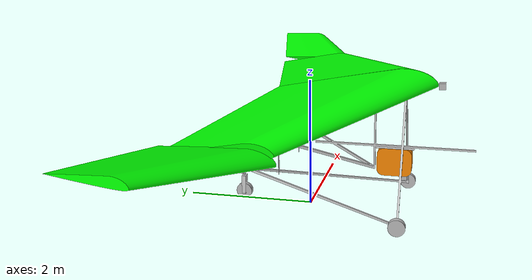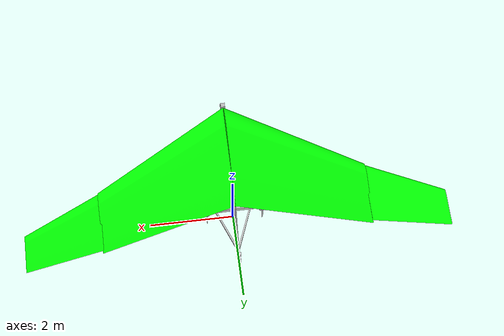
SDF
<?xml version="1.0" ?>
<sdf version="1.9">
  <model name="wsc_aircraft">
  <static>0</static>
  <self_collide>0</self_collide>

    <!-- Links -->

    <link name="base_link">
      <inertial>
        <pose>0 0 0 0 0 0</pose>
        <mass>0.001</mass>
        <inertia>
          <ixx>1e-10</ixx>
          <ixy>0</ixy>
          <iyy>1e-10</iyy>
          <ixz>0</ixz>
          <iyz>0</iyz>
          <izz>1e-10</izz>
        </inertia>
      </inertial>

    <!-- save for debugging use -->
    </link>

    <link name="wing_body">
      <pose>0 -1.47 1.95 0 0 0</pose>
      <inertial>
        <mass>0.001</mass>
        <inertia>
          <ixx>1e-10</ixx>
          <ixy>0</ixy>
          <iyy>1e-10</iyy>
          <ixz>0</ixz>
          <iyz>0</iyz>
          <izz>1e-10</izz>
        </inertia>
      </inertial>
    </link>

<link name="wing_root_left">
      <pose>-0.1 0 0 -0.05 0.05 0</pose>
      <inertial>
        <pose>1.28 -0.576 2 0 0 0</pose>
        <mass>9.3</mass>
        <inertia>
          <ixx>3.159</ixx>
          <ixy>-2.957</ixy>
          <iyy>6.887</iyy>
          <ixz>0.067</ixz>
          <iyz>0.082</iyz>
          <izz>9.962</izz>
        </inertia>
      </inertial>
      <visual name="wing_root_left_visual">
        <geometry>
          <mesh>
            <uri>model://wsc_aircraft/meshes/wing_root_left.dae</uri>
          </mesh>
        </geometry>
        <material>
          <ambient>0 1 0</ambient>
          <diffuse>0 1 0</diffuse>
          <specular>0.1 0.1 0.1 1</specular>
        </material>
      </visual>
      <collision name="wing_root_left_collision">
        <geometry>
          <mesh>
            <uri>model://wsc_aircraft/meshes/wing_root_left.dae</uri>
          </mesh>
        </geometry>
      </collision>
    </link>

    <link name="wing_root_right">
      <pose>0.1 0 0 -0.05 -0.05 0</pose>
      <inertial>
        <pose>-1.28 -0.576 2 0 0 0</pose>
        <mass>9.3</mass>
        <inertia>
          <ixx>3.159</ixx>
          <ixy>2.957</ixy>
          <iyy>6.887</iyy>
          <ixz>-0.067</ixz>
          <iyz>0.082</iyz>
          <izz>9.962</izz>
        </inertia>
      </inertial>
      <visual name="wing_root_right_visual">
        <geometry>
          <mesh>
            <uri>model://wsc_aircraft/meshes/wing_root_right.dae</uri>
          </mesh>
        </geometry>
        <material>
          <ambient>0 1 0</ambient>
          <diffuse>0 1 0</diffuse>
          <specular>0.1 0.1 0.1 1</specular>
        </material>
      </visual>
      <collision name="wing_root_right_collision">
        <geometry>
          <mesh>
            <uri>model://wsc_aircraft/meshes/wing_root_right.dae</uri>
          </mesh>
        </geometry>
      </collision>
    </link>

    <link name="wing_tip_left">
      <pose>0.3 0.26 -0.65 0.1 -0.15 0</pose>
      <inertial>
        <pose>3.8 0.5 1.93 0 0 0</pose>
        <mass>1.7</mass>
        <inertia>
          <ixx>0.215</ixx>
          <ixy>-0.187</ixy>
          <iyy>0.439</iyy>
          <ixz>-0.002</ixz>
          <iyz>-0.002</iyz>
          <izz>0.647</izz>
        </inertia>
      </inertial>
      <visual name="wing_tip_left_visual">
        <geometry>
          <mesh>
            <uri>model://wsc_aircraft/meshes/wing_tip_left_2.dae</uri>
          </mesh>
        </geometry>
        <material>
          <ambient>0 1 0</ambient>
          <diffuse>0 1 0</diffuse>
          <specular>0.1 0.1 0.1 1</specular>
        </material>
      </visual>
      <collision name="wing_tip_left_collision">
        <geometry>
          <mesh>
            <uri>model://wsc_aircraft/meshes/wing_tip_left_2.dae</uri>
          </mesh>
        </geometry>
      </collision>
    </link>

    <link name="wing_tip_right">
      <pose>-0.3 0.26 -0.65 0.1 0.15 0</pose>
      <inertial>
        <pose>-3.8 0.1 1.93 0 0 0</pose>
        <mass>1.7</mass>
        <inertia>
          <ixx>0.215</ixx>
          <ixy>0.187</ixy>
          <iyy>0.439</iyy>
          <ixz>0.002</ixz>
          <iyz>-0.002</iyz>
          <izz>0.647</izz>
        </inertia>
      </inertial>
      <visual name="wing_tip_right_visual">
        <geometry>
          <mesh>
            <uri>model://wsc_aircraft/meshes/wing_tip_right_2.dae</uri>
          </mesh>
        </geometry>
        <material>
          <ambient>0 1 0</ambient>
          <diffuse>0 1 0</diffuse>
          <specular>0.1 0.1 0.1 1</specular>
        </material>
      </visual>
      <collision name="wing_tip_right_collision">
        <geometry>
          <mesh>
            <uri>model://wsc_aircraft/meshes/wing_tip_right_2.dae</uri>
          </mesh>
        </geometry>
      </collision>
    </link>

    <link name="front_wheel1">
      <pose>-1 -1.47 0.127 1.58 0 1.58</pose>
      <inertial>
        <mass>1</mass>
        <inertia>
          <ixx>0.007</ixx>
          <ixy>0</ixy>
          <iyy>0.004</iyy>
          <ixz>0</ixz>
          <iyz>0</iyz>
          <izz>0.004</izz>
        </inertia>
      </inertial>
      <visual name="front_wheel1_visual">
        <geometry>
          <cylinder>
            <radius>0.127</radius>
            <length>0.09</length>
          </cylinder>
        </geometry>
      </visual>
      <collision name="front_wheel1_collision">
        <geometry>
          <cylinder>
            <radius>0.127</radius>
            <length>0.09</length>
          </cylinder>
        </geometry>
        <surface>
          <friction>
            <ode>
              <mu>0.01</mu>
              <mu2>0.01</mu2>
            </ode>
          </friction>
        </surface>
      </collision>
    </link>

    <link name="front_wheel2">
      <pose>1 -1.47 0.127 1.58 0 1.58</pose>
      <inertial>
        <mass>1</mass>
        <inertia>
          <ixx>0.007</ixx>
          <ixy>0</ixy>
          <iyy>0.004</iyy>
          <ixz>0</ixz>
          <iyz>0</iyz>
          <izz>0.004</izz>
        </inertia>
      </inertial>
      <visual name="front_wheel2_visual">
        <geometry>
          <cylinder>
            <radius>0.127</radius>
            <length>0.09</length>
          </cylinder>
        </geometry>
      </visual>
      <collision name="front_wheel2_collision">
        <geometry>
          <cylinder>
            <radius>0.127</radius>
            <length>0.09</length>
          </cylinder>
        </geometry>
        <surface>
          <friction>
            <ode>
              <mu>0.01</mu>
              <mu2>0.01</mu2>
            </ode>
          </friction>
        </surface>
      </collision>
    </link>

    <link name="rear_wheel">
      <pose>0 1.1 0.127 1.58 0 1.58</pose>
      <inertial>
        <mass>0.48</mass>
        <inertia>
          <ixx>0.004</ixx>
          <ixy>0</ixy>
          <iyy>0.002</iyy>
          <ixz>0</ixz>
          <iyz>0</iyz>
          <izz>0.002</izz>
        </inertia>
      </inertial>
      <visual name="rear_wheel_visual">
        <geometry>
          <cylinder>
            <radius>0.127</radius>
            <length>0.09</length>
          </cylinder>
        </geometry>
      </visual>
      <collision name="rear_wheel_collision">
        <geometry>
          <cylinder>
            <radius>0.127</radius>
            <length>0.09</length>
          </cylinder>
        </geometry>
        <surface>
          <friction>
            <ode>
              <mu>0.01</mu>
              <mu2>0.01</mu2>
            </ode>
          </friction>
        </surface>
      </collision>
    </link>

    <link name="landing_gear">
      <inertial>
        <pose>0 0.385 0.664 0 0 0</pose>
        <mass>6.3</mass>
        <inertia>
          <ixx>7.391</ixx>
          <ixy>0</ixy>
          <iyy>3.202</iyy>
          <ixz>0</ixz>
          <iyz>0.373</iyz>
          <izz>7.265</izz>
        </inertia>
      </inertial>
      <visual name="landing_gear_visual">
        <geometry>
          <mesh>
            <uri>model://wsc_aircraft/meshes/landing_gear.dae</uri>
          </mesh>
        </geometry>
      </visual>
      <collision name="landing_gear_collision">
        <geometry>
          <mesh>
            <uri>model://wsc_aircraft/meshes/landing_gear.dae</uri>
          </mesh>
        </geometry>
      </collision>
    </link>

    <link name="steering_link">
      <inertial>
        <pose>0 1.1 0.335 0 0 0</pose>
        <mass>0.1</mass>
        <inertia>
          <ixx>0.001</ixx>
          <ixy>0</ixy>
          <iyy>0.001</iyy>
          <ixz>0</ixz>
          <iyz>0</iyz>
          <izz>1.847e-4</izz>
        </inertia>
      </inertial>
      <visual name="steering_link_visual">
        <geometry>
          <mesh>
            <uri>model://wsc_aircraft/meshes/steering_link.dae</uri>
          </mesh>
        </geometry>
      </visual>
      <collision name="steering_link_collision">
        <pose>0 1.1 0.335 0 0 0</pose>
        <geometry>
          <box>
            <size>0.122 0.064 0.1</size>
          </box>
        </geometry>
      </collision>
    </link>

    <link name="hang_block_yaw">
      <inertial>
        <pose>0 -1.02 1.9 0 0 0</pose>
        <mass>0.001</mass>
        <inertia>
          <ixx>1e-10</ixx>
          <ixy>0</ixy>
          <iyy>1e-10</iyy>
          <ixz>0</ixz>
          <iyz>0</iyz>
          <izz>1e-10</izz>
        </inertia>
      </inertial>
    </link>

    <link name="hang_block_roll">
      <inertial>
        <pose>0 -1.02 1.9 0 0 0</pose>
        <mass>0.3245</mass>
        <inertia>
          <ixx>0.001</ixx>
          <ixy>0</ixy>
          <iyy>1.249e-4</iyy>
          <ixz>0</ixz>
          <iyz>0</iyz>
          <izz>0.001</izz>
        </inertia>
      </inertial>
      <visual name="hang_block_roll_visual">
        <geometry>
          <mesh>
            <uri>model://wsc_aircraft/meshes/hang_block_roll.dae</uri>
          </mesh>
        </geometry>
      </visual>
      <collision name="hang_block_roll_collision">
        <geometry>
          <mesh>
            <uri>model://wsc_aircraft/meshes/hang_block_roll.dae</uri>
          </mesh>
        </geometry>
      </collision>
    </link>

    <link name="hang_block_pitch">
      <inertial>
        <pose>0 -1.02 1.9 0 0 0</pose>
        <mass>0.3245</mass>
        <inertia>
          <ixx>4.924e-5</ixx>
          <ixy>0</ixy>
          <iyy>3.172e-4</iyy>
          <ixz>0</ixz>
          <iyz>0</iyz>
          <izz>2.969e-4</izz>
        </inertia>
      </inertial>
      <visual name="hang_block_pitch_visual">
        <geometry>
          <mesh>
            <uri>model://wsc_aircraft/meshes/hang_block_pitch.dae</uri>
          </mesh>
        </geometry>
      </visual>
      <collision name="hang_block_pitch_collision">
        <geometry>
          <mesh>
            <uri>model://wsc_aircraft/meshes/hang_block_pitch.dae</uri>
          </mesh>
        </geometry>
      </collision>
    </link>

    <link name="fuselage">
      <inertial>
        <pose>0 -0.44 1.08 0 0 0</pose>
        <mass>5</mass>
        <inertia>
          <ixx>2.563</ixx>
          <ixy>0</ixy>
          <iyy>0.619</iyy>
          <ixz>0</ixz>
          <iyz>-0.09</iyz>
          <izz>2.849</izz>
        </inertia>
      </inertial>
      <visual name="fuselage_visual">
        <geometry>
          <mesh>
            <uri>model://wsc_aircraft/meshes/fuselage.dae</uri>
          </mesh>
        </geometry>
      </visual>
      <collision name="fuselage_collision">
        <geometry>
          <mesh>
            <uri>model://wsc_aircraft/meshes/fuselage.dae</uri>
          </mesh>
        </geometry>
      </collision>
    </link>

    <link name="battery">
      <inertial>
        <pose>0 -1.3254 0.795 0 0 0</pose>
        <mass>40</mass>
        <inertia>
          <ixx>1.465</ixx>
          <ixy>0</ixy>
          <iyy>0.73</iyy>
          <ixz>0</ixz>
          <iyz>0</iyz>
          <izz>1.029</izz>
        </inertia>
      </inertial>
      <visual name="battery_visual">
        <geometry>
          <mesh>
            <uri>model://wsc_aircraft/meshes/battery.dae</uri>
          </mesh>
        </geometry>
      </visual>
      <collision name="battery_collision">
        <pose>0 -1.3254 0.795 0 0 0</pose>
        <geometry>
          <box>
            <size>0.21 0.53 0.43</size>
          </box>
        </geometry>
      </collision>
    </link>

    <link name="motor1">
      <pose>-0.65 0.31 1.13 0 1.58 1.58</pose>
      <inertial>
        <mass>1.74</mass>
        <inertia>
          <ixx>0.003</ixx>
          <ixy>0</ixy>
          <iyy>0.004</iyy>
          <ixz>0</ixz>
          <iyz>0</iyz>
          <izz>0.003</izz>
        </inertia>
      </inertial>
      <visual name="motor1_visual">
        <geometry>
          <cylinder>
            <radius>0.075</radius>
            <length>0.06</length>
          </cylinder>
        </geometry>
      </visual>
      <collision name="motor1_collision">
        <geometry>
          <cylinder>
            <radius>0.075</radius>
            <length>0.06</length>
          </cylinder>
        </geometry>
      </collision>
    </link>

    <link name="motor2">
      <pose>0.65 0.31 1.13 0 1.58 1.58</pose>
      <inertial>
        <mass>1.74</mass>
        <inertia>
          <ixx>0.003</ixx>
          <ixy>0</ixy>
          <iyy>0.004</iyy>
          <ixz>0</ixz>
          <iyz>0</iyz>
          <izz>0.003</izz>
        </inertia>
      </inertial>
      <visual name="motor2_visual">
        <geometry>
          <cylinder>
            <radius>0.075</radius>
            <length>0.06</length>
          </cylinder>
        </geometry>
      </visual>
      <collision name="motor2_collision">
        <geometry>
          <cylinder>
            <radius>0.075</radius>
            <length>0.06</length>
          </cylinder>
        </geometry>
      </collision>
    </link>

    <link name="propeller1">
      <pose>-0.65 0.35 1.13 0 1.58 1.58</pose>
      <inertial>
        <mass>0.474</mass>
        <inertia>
          <ixx>0.00001686</ixx>
          <ixy>0.0001072</ixy>
          <iyy>0.0168</iyy>
          <ixz>0</ixz>
          <iyz>0</iyz>
          <izz>0.01681</izz>
        </inertia>
      </inertial>
      <visual name="propeller1_visual">
        <geometry>
          <mesh>
            <uri>model://wsc_aircraft/meshes/propeller_S.dae</uri>
            <center>true</center>
          </mesh>
        </geometry>
      </visual>
      <collision name="propeller1_collision">
        <geometry>
          <cylinder>
              <radius>0.508</radius>
              <length>0.02</length>
            </cylinder>
        </geometry>
      </collision>
    </link>

    <link name="propeller2">
      <pose>0.65 0.35 1.13 0 1.58 1.58</pose>
      <inertial>
        <mass>0.474</mass>
        <inertia>
          <ixx>0.00001686</ixx>
          <ixy>0.0001072</ixy>
          <iyy>0.0168</iyy>
          <ixz>0</ixz>
          <iyz>0</iyz>
          <izz>0.01681</izz>
        </inertia>
      </inertial>
      <visual name="propeller2_visual">
        <geometry>
          <mesh>
            <uri>model://wsc_aircraft/meshes/propeller_S.dae</uri>
            <center>true</center>
          </mesh>
        </geometry>
      </visual>
      <collision name="propeller2_collision">
        <geometry>
          <cylinder>
              <radius>0.508</radius>
              <length>0.02</length>
            </cylinder>
        </geometry>
      </collision>
    </link>

    <!-- Joints -->
    <joint name="dummy_joint" type="fixed">
      <pose relative_to='landing_gear'/>
      <parent>base_link</parent>
      <child>landing_gear</child>
    </joint>

    <joint name="wing_body_joint" type="fixed">
      <pose relative_to='wing_body'/>
      <parent>landing_gear</parent>
      <child>wing_body</child>
    </joint>

    <joint name="landing_wing_left_joint" type="revolute">
      <pose>0 -0.576 2 0 0 0</pose>
      <parent>wing_body</parent>
      <child>wing_root_left</child>
      <axis>
        <xyz>1 0 0</xyz>
        <limit>
          <lower>-0.01</lower>
          <upper>0.01</upper>
          <effort>9e80</effort>
          <velocity>1e-5</velocity>
        </limit>
        <dynamics>
          <damping>5e4</damping>
          <friction>5e2</friction>
        </dynamics>
      </axis>
    </joint>

    <joint name="landing_wing_right_joint" type="revolute">
      <pose>0 -0.576 2 0 0 0</pose>
      <parent>wing_body</parent>
      <child>wing_root_right</child>
      <axis>
        <xyz>1 0 0</xyz>
        <limit>
          <lower>-0.01</lower>
          <upper>0.01</upper>
          <effort>9e80</effort>
          <velocity>1e-5</velocity>
        </limit>
        <dynamics>
          <damping>5e4</damping>
          <friction>5e2</friction>
        </dynamics>
      </axis>
    </joint>

    <joint name="wing_joint_left" type="revolute">
      <pose>0 0.5 1.93 0 0 0</pose>
      <parent>wing_root_left</parent>
      <child>wing_tip_left</child>
      <axis>
        <xyz>1 1 0</xyz>
        <limit>
          <lower>-0.001</lower>
          <upper>0.001</upper>
          <effort>9e80</effort>
          <velocity>1e-5</velocity>
        </limit>
        <dynamics>
          <damping>5e80</damping>
          <friction>5e80</friction>
        </dynamics>
      </axis>
    </joint>

    <joint name="wing_joint_right" type="revolute">
      <pose>0 0.5 1.93 0 0 0</pose>
      <parent>wing_root_right</parent>
      <child>wing_tip_right</child>
      <axis>
        <xyz>1 1 0</xyz>
        <limit>
          <lower>-0.001</lower>
          <upper>0.001</upper>
          <effort>9e80</effort>
          <velocity>1e-5</velocity>
        </limit>
        <dynamics>
          <damping>5e80</damping>
          <friction>5e80</friction>
        </dynamics>
      </axis>
    </joint>

    <joint name="front_wheel1_joint" type="revolute">
      <pose relative_to='front_wheel1'/>
      <parent>landing_gear</parent>
      <child>front_wheel1</child>
      <axis>
        <xyz>0 0 1</xyz>
        <dynamics>
          <damping>0.1</damping>
          <friction>0.1</friction>
        </dynamics>
      </axis>
    </joint>

    <joint name="front_wheel2_joint" type="revolute">
      <pose relative_to='front_wheel2'/>
      <parent>landing_gear</parent>
      <child>front_wheel2</child>
      <axis>
        <xyz>0 0 1</xyz>
        <dynamics>
          <damping>0.1</damping>
          <friction>0.1</friction>
        </dynamics>
      </axis>
    </joint>

    <joint name="rear_wheel_joint" type="revolute">
      <pose relative_to='rear_wheel'/>
      <parent>steering_link</parent>
      <child>rear_wheel</child>
      <axis>
        <xyz>0 0 1</xyz>
        <dynamics>
          <damping>15</damping>
          <friction>1</friction>
        </dynamics>
      </axis>
    </joint>

    <joint name="steering_wheel_joint" type="revolute">
      <pose>0 1.1 0.335 0 0 0</pose>
      <parent>landing_gear</parent>
      <child>steering_link</child>
      <axis>
        <xyz>0 0 1</xyz>
        <limit>
          <lower>-0.7</lower>
          <upper>0.7</upper>
          <effort>1000</effort>
          <velocity>100</velocity>
        </limit>
        <dynamics>
          <damping>50</damping>
          <friction>5</friction>
        </dynamics>
      </axis>
    </joint>

    <joint name="fuselage_yaw_joint" type="revolute">
      <pose>0 -1.027 1.9 0 0 0</pose>
      <parent>wing_body</parent>
      <child>hang_block_yaw</child>
      <axis>
        <xyz>0 0 1</xyz>
        <limit>
          <effort>1e80</effort>
          <velocity>0.5</velocity>
          <lower>-0.0</lower>
          <upper>0.0</upper>
        </limit>
        <dynamics>
          <damping>2e1</damping>
          <friction>1</friction>
        </dynamics>
      </axis>
    </joint>

    <joint name="fuselage_roll_joint" type="revolute">
      <pose>0 -1.027 1.9 0 0 0</pose>
      <parent>hang_block_yaw</parent>
      <child>hang_block_roll</child>
      <axis>
        <xyz>0 1 0</xyz>
        <limit>
          <effort>1e80</effort>
          <velocity>0.5</velocity>
          <lower>-0.35</lower>
          <upper>0.35</upper>
        </limit>
        <dynamics>
          <damping>1e2</damping>
          <friction>1</friction>
        </dynamics>
      </axis>
    </joint>

    <joint name="fuselage_pitch_joint" type="revolute">
      <pose>0 -1.027 1.9 0 0 0</pose>
      <parent>hang_block_roll</parent>
      <child>hang_block_pitch</child>
      <axis>
        <xyz>1 0 0</xyz>
        <limit>
          <effort>1e80</effort>
          <velocity>0.5</velocity>
          <lower>-0.25</lower>
          <upper>0.25</upper>
        </limit>
        <dynamics>
          <damping>2e4</damping>
          <friction>1</friction>
        </dynamics>
      </axis>
    </joint>

    <joint name="hang_block_joint" type="fixed">
      <pose>0 -1.027 1.9 0 0 0</pose>
      <parent>hang_block_pitch</parent>
      <child>fuselage</child>
    </joint>

    <joint name="battery_joint" type="fixed">
      <pose>0 -1.3254 0.795 0 0 0</pose>
      <parent>fuselage</parent>
      <child>battery</child>
    </joint>

    <joint name="motor1_joint" type="fixed">
      <pose relative_to='motor1'/>
      <parent>fuselage</parent>
      <child>motor1</child>
    </joint>

    <joint name="motor2_joint" type="fixed">
      <pose relative_to='motor2'/>
      <parent>fuselage</parent>
      <child>motor2</child>
    </joint>

    <joint name="propeller1_joint" type="revolute">
      <pose relative_to='propeller1'/>
      <parent>motor1</parent>
      <child>propeller1</child>
      <axis>
        <xyz>0 0 1</xyz>
        <dynamics>
          <damping>0.2</damping>
          <friction>2</friction>
        </dynamics>
      </axis>
      <sensor name="prop1_sensor" type="force_torque">
        <always_on>true</always_on>
        <update_rate>60</update_rate>
        <visualize>true</visualize>
        <topic>prop1_force_joint/force_torque</topic>
        <force_torque>
          <frame>sensor</frame>
          <measure_direction>parent_to_child</measure_direction>
        </force_torque>
      </sensor>
    </joint>

    <joint name="propeller2_joint" type="revolute">
      <pose relative_to='propeller2'/>
      <parent>motor2</parent>
      <child>propeller2</child>
      <axis>
        <xyz>0 0 -1</xyz>
        <dynamics>
          <damping>0.2</damping>
          <friction>2</friction>
        </dynamics>
      </axis>
      <sensor name="prop2_sensor" type="force_torque">
        <always_on>true</always_on>
        <update_rate>60</update_rate>
        <visualize>true</visualize>
        <topic>prop2_force_joint/force_torque</topic>
        <force_torque>
          <frame>sensor</frame>
          <measure_direction>parent_to_child</measure_direction>
        </force_torque>
      </sensor>
    </joint>

    <!-- Sensors -->

    <link name='imu_link1'>
      <inertial>
        <pose>0 0 0 0 0 0</pose>
        <mass>0.11</mass>
        <inertia>
          <ixx>0.00002</ixx>
          <ixy>0</ixy>
          <ixz>0</ixz>
          <iyy>0.00002</iyy>
          <iyz>0</iyz>
          <izz>0.00002</izz>
        </inertia>
      </inertial>
      <sensor name="imu_sensor1" type="imu">
        <pose>0 0 0 3.141593 0 -1.5707963</pose>
        <always_on>1</always_on>
        <update_rate>1000.0</update_rate>
      </sensor>
    </link>
    <joint name='imu_joint1' type='revolute'>
      <child>imu_link1</child>
      <parent>wing_body</parent>
      <axis>
        <xyz>0 0 1</xyz>
        <limit>
          <lower>0</lower>
          <upper>0</upper>
          <effort>0</effort>
          <velocity>0</velocity>
        </limit>
        <dynamics>
          <damping>1.0</damping>
        </dynamics>
      </axis>
    </joint>

<!-- Gimbal camera links and joints  -->
    <link name="gimbal_camera">
      <pose>0 -2 2 0 0 -1.5707963</pose>
      <inertial>
        <pose>0 0 0 0 0 0</pose>
        <mass>0.001</mass>
        <inertia>
          <ixx>0.00002</ixx>
          <ixy>0</ixy>
          <ixz>0</ixz>
          <iyy>0.00002</iyy>
          <iyz>0</iyz>
          <izz>0.00002</izz>
        </inertia>
      </inertial>
      <visual name="gimbal_camera_visual">
        <geometry>
          <box>
            <size>0.1 0.1 0.1</size>
          </box>
        </geometry>
      </visual>
      <sensor name="gimbal_camera" type="camera">
        <camera>
          <horizontal_fov>1.098</horizontal_fov>
          <image>
            <width>320</width>
            <height>240</height>
          </image>
          <clip>
            <near>0.1</near>
            <far>1000</far>
          </clip>
        </camera>
        <always_on>true</always_on>
        <update_rate>30</update_rate>
      </sensor>

      <sensor name='gpu_lidar2' type='gpu_lidar'>
        <topic>lidar2</topic>
        <update_rate>10</update_rate>
        <lidar>
          <scan>
            <horizontal>
              <samples>64</samples>
              <resolution>1</resolution>
              <min_angle>-0.261799</min_angle>
              <max_angle>0.261799</max_angle>
            </horizontal>
            <vertical>
              <samples>64</samples>
              <resolution>1</resolution>
              <min_angle>-0.261799</min_angle>
              <max_angle>0.261799</max_angle>
            </vertical>
          </scan>
          <range>
            <min>10</min>
            <max>1000.0</max>
            <resolution>0.1</resolution>
          </range>
        </lidar>
        <alwaysOn>1</alwaysOn>
        <visualize>true</visualize>
      </sensor>

    </link>

    <link name="fixed_camera">
      <pose>0 -2 2 0 0 -1.5707963</pose>
      <inertial>
        <pose>0 0 0 0 0 0</pose>
        <mass>0.001</mass>
        <inertia>
          <ixx>0.00002</ixx>
          <ixy>0</ixy>
          <ixz>0</ixz>
          <iyy>0.00002</iyy>
          <iyz>0</iyz>
          <izz>0.00002</izz>
        </inertia>
      </inertial>
        <sensor name='gpu_lidar' type='gpu_lidar'>
          <topic>lidar</topic>
          <update_rate>30</update_rate>
          <lidar>
            <scan>
              <horizontal>
                <samples>1</samples>
                <resolution>1</resolution>
                <min_angle>-0.02</min_angle>
                <max_angle>0.02</max_angle>
              </horizontal>
              <vertical>
                <samples>1</samples>
                <resolution>1</resolution>
                <min_angle>0</min_angle>
                <max_angle>0</max_angle>
              </vertical>
            </scan>
            <range>
              <min>0.1</min>
              <max>10</max>
              <resolution>0.1</resolution>
            </range>
          </lidar>
          <alwaysOn>1</alwaysOn>
          <visualize>true</visualize>
        </sensor>
    </link>

    <link name="gimbal_yaw">
      <pose relative_to='gimbal_camera'/>
      <inertial>
        <pose>0 0 0 0 0 0</pose>
        <mass>0.001</mass>
        <inertia>
          <ixx>0.00002</ixx>
          <ixy>0</ixy>
          <ixz>0</ixz>
          <iyy>0.00002</iyy>
          <iyz>0</iyz>
          <izz>0.00002</izz>
        </inertia>
      </inertial>
    </link>

    <link name="gimbal_roll">
      <pose relative_to='gimbal_camera'/>
      <inertial>
        <pose>0 0 0 0 0 0</pose>
        <mass>0.001</mass>
        <inertia>
          <ixx>0.00002</ixx>
          <ixy>0</ixy>
          <ixz>0</ixz>
          <iyy>0.00002</iyy>
          <iyz>0</iyz>
          <izz>0.00002</izz>
        </inertia>
      </inertial>
    </link>

    <link name="gimbal_pitch">
      <pose relative_to='gimbal_camera'/>
      <inertial>
        <pose>0 0 0 0 0 0</pose>
        <mass>0.001</mass>
        <inertia>
          <ixx>0.00002</ixx>
          <ixy>0</ixy>
          <ixz>0</ixz>
          <iyy>0.00002</iyy>
          <iyz>0</iyz>
          <izz>0.00002</izz>
        </inertia>
      </inertial>
    </link>

    <joint name="gimbal_yaw_joint" type="revolute">
      <pose relative_to='gimbal_camera'/>
      <parent>base_link</parent>
      <child>gimbal_yaw</child>
      <axis>
        <xyz>0 0 1</xyz>
        <limit>
          <effort>1e80</effort>
          <velocity>1</velocity>
          <lower>-3.14159</lower>
          <upper>3.14159</upper>
        </limit>
        <dynamics>
          <damping>0.1</damping>
          <friction>0.01</friction>
        </dynamics>
      </axis>
    </joint>

    <joint name="gimbal_roll_joint" type="revolute">
      <pose relative_to='gimbal_camera'/>
      <parent>gimbal_yaw</parent>
      <child>gimbal_roll</child>
      <axis>
        <xyz>1 0 0</xyz>
        <limit>
          <effort>1e80</effort>
          <velocity>1</velocity>
          <lower>-0.5236</lower>
          <upper>0.5236</upper>
        </limit>
        <dynamics>
          <damping>0.1</damping>
          <friction>0.01</friction>
        </dynamics>
      </axis>
    </joint>

    <joint name="gimbal_pitch_joint" type="revolute">
      <pose relative_to='gimbal_camera'/>
      <parent>gimbal_roll</parent>
      <child>gimbal_pitch</child>
      <axis>
        <xyz>0 1 0</xyz>
        <limit>
          <effort>1e80</effort>
          <velocity>1</velocity>
          <lower>-0.44</lower>
          <upper>1.571</upper>
        </limit>
        <dynamics>
          <damping>0.1</damping>
          <friction>0.01</friction>
        </dynamics>
      </axis>
    </joint>

    <joint name="gimbal_camera_joint" type="fixed">
      <pose relative_to='gimbal_camera'/>
      <parent>gimbal_pitch</parent>
      <child>gimbal_camera</child>
    </joint>

    <joint name="fixed_camera_joint" type="fixed">
      <pose relative_to='fixed_camera'/>
      <parent>base_link</parent>
      <child>fixed_camera</child>
    </joint>

<!-- Fog generator for trails-->

    <link name="trail_gen">
      <pose>0 2 0 0 0 0</pose>
      <particle_emitter name="emitter" type="point">
        <emitting>true</emitting>
        <size>0.001 0.001 0.001</size>
        <particle_size>1 1 1</particle_size>
        <particle_scatter_ratio>1.0</particle_scatter_ratio>
        <lifetime>60</lifetime>
        <min_velocity>0</min_velocity>
        <max_velocity>0</max_velocity>
        <scale_rate>0</scale_rate>
        <rate>20</rate>
        <material>
          <ambient>0 0 1</ambient>
          <diffuse>0.7 0.7 0.7</diffuse>
          <specular>1.0 1.0 1.0</specular>
        </material>
      </particle_emitter>
    </link>

    <joint name="tail_gen_joint" type="fixed">
      <pose>0 0 0 0 0 0</pose>
      <parent>wing_body</parent>
      <child>trail_gen</child>
    </joint>

<!-- plugins -->

  <plugin filename="libgz-sim-joint-state-publisher-system.so"
    name="gz::sim::systems::JointStatePublisher">
  </plugin>

  <plugin
    filename="ignition-gazebo-forcetorque-system"
    name="ignition::gazebo::systems::ForceTorque">
  </plugin>

  <!-- wing_root_left-->
  <plugin filename="gz-sim-lift-drag-system"
      name="gz::sim::systems::LiftDrag">
    <a0>0.0436</a0>
    <cla>5.87</cla>
    <cda>0.0306</cda>
    <cma>0</cma>
    <alpha_stall>0.38</alpha_stall>
    <cla_stall>-3.44</cla_stall>
    <cda_stall>1.13</cda_stall>
    <cma_stall>0</cma_stall>
    <cp>1.2 -0.6 2.15</cp>
    <area>6</area>
    <air_density>1.2041</air_density>
    <forward>0 -1 0</forward>
    <upward>0 0 1</upward>
    <link_name>wing_root_left</link_name>
  </plugin>

  <!-- wing_root_right-->
  <plugin filename="gz-sim-lift-drag-system"
      name="gz::sim::systems::LiftDrag">
    <a0>0.0436</a0>
    <cla>5.87</cla>
    <cda>0.0306</cda>
    <cma>0</cma>
    <alpha_stall>0.38</alpha_stall>
    <cla_stall>-3.44</cla_stall>
    <cda_stall>1.13</cda_stall>
    <cma_stall>0</cma_stall>
    <cp>-1.2 -0.6 2.15</cp>
    <area>6</area>
    <air_density>1.2041</air_density>
    <forward>0 -1 0</forward>
    <upward>0 0 1</upward>
    <link_name>wing_root_right</link_name>
  </plugin>

  <!-- wing_tip_left-->
  <plugin filename="gz-sim-lift-drag-system"
      name="gz::sim::systems::LiftDrag">
    <a0>0.0436</a0>
    <cla>5.87</cla>
    <cda>0.0306</cda>
    <cma>0</cma>
    <alpha_stall>0.38</alpha_stall>
    <cla_stall>-3.44</cla_stall>
    <cda_stall>1.13</cda_stall>
    <cma_stall>0</cma_stall>
    <cp>3. 0.6 2.2</cp>
    <area>2</area>
    <air_density>1.2041</air_density>
    <forward>0 -1 0</forward>
    <upward>0 0 1</upward>
    <link_name>wing_tip_left</link_name>
  </plugin>

  <!-- wing_tip_right-->
  <plugin filename="gz-sim-lift-drag-system"
      name="gz::sim::systems::LiftDrag">
    <a0>0.0436 </a0>
    <cla>5.87</cla>
    <cda>0.0306</cda>
    <cma>0</cma>
    <alpha_stall>0.38</alpha_stall>
    <cla_stall>-3.44</cla_stall>
    <cda_stall>1.13</cda_stall>
    <cma_stall>0</cma_stall>
    <cp>-3. 0.6 2.2</cp>
    <area>2</area>
    <air_density>1.2041</air_density>
    <forward>0 -1 0</forward>
    <upward>0 0 1</upward>
    <link_name>wing_tip_right</link_name>
  </plugin>

  <!-- propeller1_blade_1 -->
  <plugin filename="gz-sim-lift-drag-system"
      name="gz::sim::systems::LiftDrag">
    <a0>0.35</a0>
    <alpha_stall>1.4</alpha_stall>
    <cla>2.1500</cla>
    <cda>0.55</cda>
    <cma>0.00</cma>
    <cla_stall>-0.025</cla_stall>
    <cda_stall>0.0</cda_stall>
    <cma_stall>0.0</cma_stall>
    <area>0.073</area>
    <air_density>1.2041</air_density>
    <cp>0.2 0 0</cp>
    <forward>0 1 0</forward>
    <upward>0 0 -1</upward>
    <link_name>propeller1</link_name>
  </plugin>
  <!-- propeller1_blade_2 -->
  <plugin filename="gz-sim-lift-drag-system"
      name="gz::sim::systems::LiftDrag">
    <a0>0.35</a0>
    <alpha_stall>1.4</alpha_stall>
    <cla>2.1500</cla>
    <cda>0.55</cda>
    <cma>0.00</cma>
    <cla_stall>-0.025</cla_stall>
    <cda_stall>0.0</cda_stall>
    <cma_stall>0.0</cma_stall>
    <area>0.073</area>
    <air_density>1.2041</air_density>
    <cp>-0.2 0 0</cp>
    <forward>0 -1 0</forward>
    <upward>0 0 -1</upward>
    <link_name>propeller1</link_name>
  </plugin>

  <!-- propeller2_blade_1 -->
  <plugin filename="gz-sim-lift-drag-system"
      name="gz::sim::systems::LiftDrag">
    <a0>0.35</a0>
    <alpha_stall>1.4</alpha_stall>
    <cla>2.1500</cla>
    <cda>0.55</cda>
    <cma>0.00</cma>
    <cla_stall>-0.025</cla_stall>
    <cda_stall>0.0</cda_stall>
    <cma_stall>0.0</cma_stall>
    <area>0.073</area>
    <air_density>1.2041</air_density>
    <cp>0.2 0 0</cp>
    <forward>0 -1 0</forward>
    <upward>0 0 -1</upward>
    <link_name>propeller2</link_name>
  </plugin>
  <!-- propeller2_blade_2 -->
  <plugin filename="gz-sim-lift-drag-system"
      name="gz::sim::systems::LiftDrag">
    <a0>0.35</a0>
    <alpha_stall>1.4</alpha_stall>
    <cla>2.1500</cla>
    <cda>0.55</cda>
    <cma>0.00</cma>
    <cla_stall>-0.025</cla_stall>
    <cda_stall>0.0</cda_stall>
    <cma_stall>0.0</cma_stall>
    <area>0.073</area>
    <air_density>1.2041</air_density>
    <cp>-0.2 0 0</cp>
    <forward>0 1 0</forward>
    <upward>0 0 -1</upward>
    <link_name>propeller2</link_name>
  </plugin>

  <!-- drag modelling of remaining components -->
  <!-- frontal area -->
  <plugin filename="gz-sim-lift-drag-system"
      name="gz::sim::systems::LiftDrag">
    <a0>0.785398 </a0>
    <cla>0</cla>
    <cda>57.3</cda>
    <cma>0</cma>
    <alpha_stall>0.0174533</alpha_stall>
    <cla_stall>0</cla_stall>
    <cda_stall>0</cda_stall>
    <cma_stall>0</cma_stall>
    <cp>0 -0.85 1.13</cp>
    <area>0.56</area>
    <air_density>1.2041</air_density>
    <forward>0 -1 0</forward>
    <upward>0 0 1</upward>
    <link_name>fuselage</link_name>
  </plugin>

  <!-- front left wheel-->
  <plugin filename="gz-sim-lift-drag-system"
      name="gz::sim::systems::LiftDrag">
    <a0>0.785398 </a0>
    <cla>0</cla>
    <cda>57.3</cda>
    <cma>0</cma>
    <alpha_stall>0.0174533</alpha_stall>
    <cla_stall>0</cla_stall>
    <cda_stall>0</cda_stall>
    <cma_stall>0</cma_stall>
    <cp>-1 -1.47 0.127</cp>
    <area>0.023</area>
    <air_density>1.2041</air_density>
    <forward>0 -1 0</forward>
    <upward>0 0 1</upward>
    <link_name>fuselage</link_name>
  </plugin>

  <!-- front right wheel-->
  <plugin filename="gz-sim-lift-drag-system"
      name="gz::sim::systems::LiftDrag">
    <a0>0.785398 </a0>
    <cla>0</cla>
    <cda>57.3</cda>
    <cma>0</cma>
    <alpha_stall>0.0174533</alpha_stall>
    <cla_stall>0</cla_stall>
    <cda_stall>0</cda_stall>
    <cma_stall>0</cma_stall>
    <cp>1 -1.47 0.127</cp>
    <area>0.023</area>
    <air_density>1.2041</air_density>
    <forward>0 -1 0</forward>
    <upward>0 0 1</upward>
    <link_name>fuselage</link_name>
  </plugin>

  <!-- rear wheel-->
  <plugin filename="gz-sim-lift-drag-system"
      name="gz::sim::systems::LiftDrag">
    <a0>0.785398 </a0>
    <cla>0</cla>
    <cda>57.3</cda>
    <cma>0</cma>
    <alpha_stall>0.0174533</alpha_stall>
    <cla_stall>0</cla_stall>
    <cda_stall>0</cda_stall>
    <cma_stall>0</cma_stall>
    <cp>0 1.1 0.127</cp>
    <area>0.023</area>
    <air_density>1.2041</air_density>
    <forward>0 -1 0</forward>
    <upward>0 0 1</upward>
    <link_name>fuselage</link_name>
  </plugin>

  <plugin filename="libgz-sim-apply-joint-force-system.so"
    name="gz::sim::systems::ApplyJointForce">
    <joint_name>fuselage_roll_joint</joint_name>
    <joint_name>fuselage_pitch_joint</joint_name>
    <joint_name>steering_wheel_joint</joint_name>
    <joint_name>propeller1_joint</joint_name>
    <joint_name>propeller2_joint</joint_name>
    <joint_name>wing_tip_roll_left</joint_name>
    <joint_name>wing_tip_roll_right</joint_name>
    <joint_name>gimbal_yaw_joint</joint_name>
    <joint_name>gimbal_roll_joint</joint_name>
    <joint_name>gimbal_pitch_joint</joint_name>
  </plugin>

  <plugin name="ArduPilotPlugin" filename="ArduPilotPlugin">
    <!-- Port settings -->
    <fdm_addr>127.0.0.1</fdm_addr>
    <fdm_port_in>9002</fdm_port_in>
    <connectionTimeoutMaxCount>5</connectionTimeoutMaxCount>
    <lock_step>1</lock_step>
    <no_time_sync>1</no_time_sync>

    <modelXYZToAirplaneXForwardZDown>0 0 0 3.141593 0 -1.5707963</modelXYZToAirplaneXForwardZDown>
    <gazeboXYZToNED>0 0 0 3.141593 0 1.57079632</gazeboXYZToNED>

    <!-- Sensors -->
    <imuName>imu_sensor1</imuName>

    <control channel="0">
      <jointName>fuselage_roll_joint</jointName>
      <useForce>1</useForce>
      <multiplier>0.9</multiplier>
      <offset>-0.5</offset>
      <servo_min>1100</servo_min>
      <servo_max>1900</servo_max>
      <type>POSITION</type>
      <p_gain>2e3</p_gain>
      <i_gain>0</i_gain>
      <d_gain>50</d_gain>
      <i_max>100</i_max>
      <i_min>-100</i_min>
      <cmd_max>1e20</cmd_max>
      <cmd_min>-1e20</cmd_min>
    </control>

    <control channel="1">
      <jointName>fuselage_pitch_joint</jointName>
      <useForce>1</useForce>
      <multiplier>0.5</multiplier>
      <offset>-0.5</offset>
      <servo_min>1100</servo_min>
      <servo_max>1900</servo_max>
      <type>POSITION</type>
      <p_gain>5e4</p_gain>
      <i_gain>0.1</i_gain>
      <d_gain>10</d_gain>
      <i_max>100</i_max>
      <i_min>-100</i_min>
      <cmd_max>1e80</cmd_max>
      <cmd_min>-1e80</cmd_min>
    </control>

    <control channel="3">
      <jointName>steering_wheel_joint</jointName>
      <useForce>1</useForce>
      <multiplier>1.4</multiplier>
      <offset>-0.5</offset>
      <servo_min>1100</servo_min>
      <servo_max>1900</servo_max>
      <type>POSITION</type>
      <p_gain>2500.0</p_gain>
      <i_gain>0.5</i_gain>
      <d_gain>50</d_gain>
      <i_max>1</i_max>
      <i_min>-1</i_min>
      <cmd_max>200.5</cmd_max>
      <cmd_min>-200.5</cmd_min>
    </control>

    <control channel="4">
      <jointName>wing_joint_left</jointName>
      <useForce>1</useForce>
      <multiplier>0.2</multiplier>
      <offset>-0.5</offset>
      <servo_min>1100</servo_min>
      <servo_max>1900</servo_max>
      <type>POSITION</type>
      <p_gain>1000</p_gain>
      <i_gain>10</i_gain>
      <d_gain>200</d_gain>
      <i_max>1</i_max>
      <i_min>-1</i_min>
      <cmd_max>1e5</cmd_max>
      <cmd_min>-1e5</cmd_min>
    </control>

    <control channel="5">
      <jointName>wing_joint_right</jointName>
      <useForce>1</useForce>
      <multiplier>0.2</multiplier>
      <offset>-0.5</offset>
      <servo_min>1100</servo_min>
      <servo_max>1900</servo_max>
      <type>POSITION</type>
      <p_gain>1000</p_gain>
      <i_gain>10</i_gain>
      <d_gain>200</d_gain>
      <i_max>1</i_max>
      <i_min>-1</i_min>
      <cmd_max>1e5</cmd_max>
      <cmd_min>-1e5</cmd_min>
    </control>

    <control channel="9">
      <jointName>propeller1_joint</jointName>
      <useForce>1</useForce>
      <multiplier>400</multiplier>
      <offset>0</offset>
      <servo_min>1100</servo_min>
      <servo_max>1900</servo_max>
      <type>VELOCITY</type>
      <p_gain>20</p_gain>
      <i_gain>0</i_gain>
      <d_gain>0</d_gain>
      <i_max>0</i_max>
      <i_min>0</i_min>
      <cmd_max>2000</cmd_max>
      <cmd_min>0.0</cmd_min>
    </control>

    <control channel="10">
      <jointName>propeller2_joint</jointName>
      <useForce>1</useForce>
      <multiplier>400</multiplier>
      <offset>0</offset>
      <servo_min>1100</servo_min>
      <servo_max>1900</servo_max>
      <type>VELOCITY</type>
      <p_gain>20</p_gain>
      <i_gain>0</i_gain>
      <d_gain>0</d_gain>
      <i_max>0</i_max>
      <i_min>0</i_min>
      <cmd_max>2000</cmd_max>
      <cmd_min>0.0</cmd_min>
    </control>

    <!-- gimbal control -->

    <control channel="6">
      <jointName>gimbal_yaw_joint</jointName>
      <useForce>1</useForce>
      <multiplier>-6.28318</multiplier>
      <offset>-0.5</offset>
      <servo_min>1100</servo_min>
      <servo_max>1900</servo_max>
      <type>POSITION</type>
      <p_gain>1</p_gain>
      <i_gain>0</i_gain>
      <d_gain>0.1</d_gain>
      <i_max>1</i_max>
      <i_min>-1</i_min>
      <cmd_max>1e3</cmd_max>
      <cmd_min>-1e3</cmd_min>
    </control>

    <control channel="7">
      <jointName>gimbal_roll_joint</jointName>
      <useForce>1</useForce>
      <multiplier>1.04</multiplier>
      <offset>-0.5</offset>
      <servo_min>1100</servo_min>
      <servo_max>1900</servo_max>
      <type>POSITION</type>
      <p_gain>1</p_gain>
      <i_gain>0</i_gain>
      <d_gain>0.1</d_gain>
      <i_max>1</i_max>
      <i_min>-1</i_min>
      <cmd_max>1e3</cmd_max>
      <cmd_min>-1e3</cmd_min>
    </control>

    <control channel="8">
      <jointName>gimbal_pitch_joint</jointName>
      <useForce>1</useForce>
      <multiplier>-2.011</multiplier>
      <offset>-0.7812</offset>
      <servo_min>1100</servo_min>
      <servo_max>1900</servo_max>
      <type>POSITION</type>
      <p_gain>1</p_gain>
      <i_gain>0</i_gain>
      <d_gain>0.1</d_gain>
      <i_max>1</i_max>
      <i_min>-1</i_min>
      <cmd_max>1e3</cmd_max>
      <cmd_min>-1e3</cmd_min>
    </control>

  </plugin>

  </model>
</sdf>
